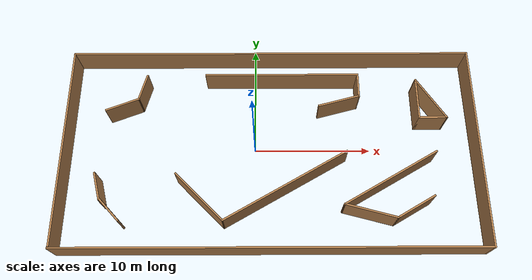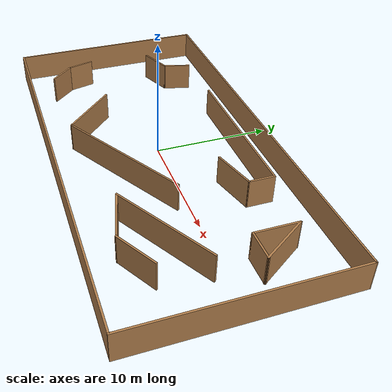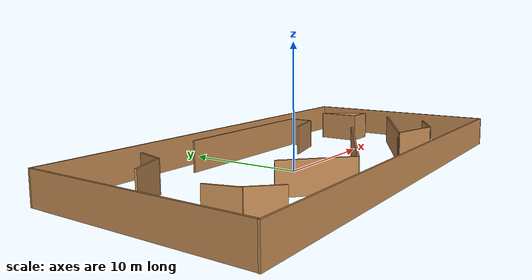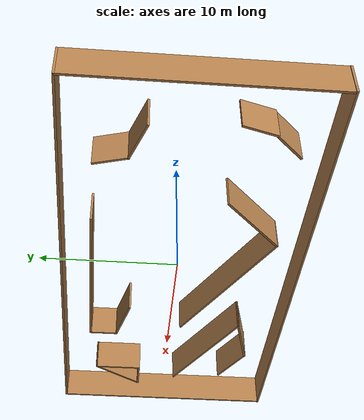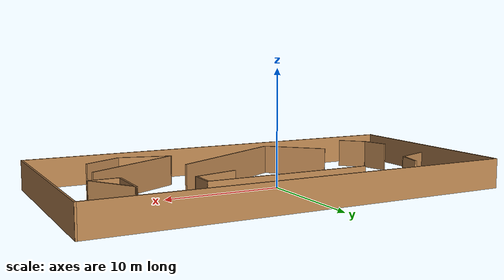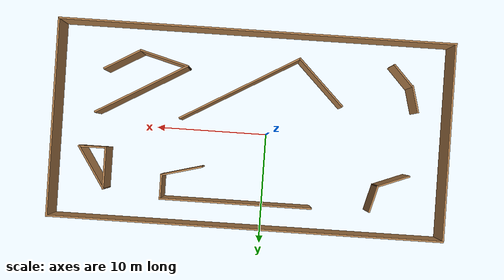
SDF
<?xml version='1.0'?>
<sdf version='1.6'>
  <model name='Sandbox_nav'>
    <pose frame=''>1.38768 -0.292866 0 0 -0 0</pose>
    <link name='Wall_10'>
      <collision name='Wall_10_Collision'>
        <geometry>
          <box>
            <size>2.5 0.15 2.5</size>
          </box>
        </geometry>
        <pose frame=''>0 0 1.25 0 -0 0</pose>
      </collision>
      <visual name='Wall_10_Visual'>
        <pose frame=''>0 0 1.25 0 -0 0</pose>
        <geometry>
          <box>
            <size>2.5 0.15 2.5</size>
          </box>
        </geometry>
        <material>
          <script>
            <uri>file://media/materials/scripts/gazebo.material</uri>
            <name>Gazebo/Wood</name>
          </script>
          <ambient>1 1 1 1</ambient>
        </material>
        <meta>
          <layer>0</layer>
        </meta>
      </visual>
      <pose frame=''>-11.1858 5.38005 0 0 -0 -1.8326</pose>
    </link>
    <link name='Wall_11'>
      <collision name='Wall_11_Collision'>
        <geometry>
          <box>
            <size>3.04858 0.15 2.5</size>
          </box>
        </geometry>
        <pose frame=''>0 0 1.25 0 -0 0</pose>
      </collision>
      <visual name='Wall_11_Visual'>
        <pose frame=''>0 0 1.25 0 -0 0</pose>
        <geometry>
          <box>
            <size>3.04858 0.15 2.5</size>
          </box>
        </geometry>
        <material>
          <script>
            <uri>file://media/materials/scripts/gazebo.material</uri>
            <name>Gazebo/Wood</name>
          </script>
          <ambient>1 1 1 1</ambient>
        </material>
        <meta>
          <layer>0</layer>
        </meta>
      </visual>
      <pose frame=''>-12.8406 3.71958 0 0 -0 -2.77054</pose>
    </link>
    <link name='Wall_13'>
      <collision name='Wall_13_Collision'>
        <geometry>
          <box>
            <size>13.5 0.15 2.5</size>
          </box>
        </geometry>
        <pose frame=''>0 0 1.25 0 -0 0</pose>
      </collision>
      <visual name='Wall_13_Visual'>
        <pose frame=''>0 0 1.25 0 -0 0</pose>
        <geometry>
          <box>
            <size>13.5 0.15 2.5</size>
          </box>
        </geometry>
        <material>
          <script>
            <uri>file://media/materials/scripts/gazebo.material</uri>
            <name>Gazebo/Wood</name>
          </script>
          <ambient>1 1 1 1</ambient>
        </material>
        <meta>
          <layer>0</layer>
        </meta>
      </visual>
      <pose frame=''>0.975034 6.59525 0 0 -0 0</pose>
    </link>
    <link name='Wall_14'>
      <collision name='Wall_14_Collision'>
        <geometry>
          <box>
            <size>2.25 0.15 2.5</size>
          </box>
        </geometry>
        <pose frame=''>0 0 1.25 0 -0 0</pose>
      </collision>
      <visual name='Wall_14_Visual'>
        <pose frame=''>0 0 1.25 0 -0 0</pose>
        <geometry>
          <box>
            <size>2.25 0.15 2.5</size>
          </box>
        </geometry>
        <material>
          <script>
            <uri>file://media/materials/scripts/gazebo.material</uri>
            <name>Gazebo/Wood</name>
          </script>
          <ambient>1 1 1 1</ambient>
        </material>
        <meta>
          <layer>0</layer>
        </meta>
      </visual>
      <pose frame=''>7.65003 5.54525 0 0 -0 -1.5708</pose>
    </link>
    <link name='Wall_15'>
      <collision name='Wall_15_Collision'>
        <geometry>
          <box>
            <size>3.75 0.15 2.5</size>
          </box>
        </geometry>
        <pose frame=''>0 0 1.25 0 -0 0</pose>
      </collision>
      <visual name='Wall_15_Visual'>
        <pose frame=''>0 0 1.25 0 -0 0</pose>
        <geometry>
          <box>
            <size>3.75 0.15 2.5</size>
          </box>
        </geometry>
        <material>
          <script>
            <uri>file://media/materials/scripts/gazebo.material</uri>
            <name>Gazebo/Wood</name>
          </script>
          <ambient>1 1 1 1</ambient>
        </material>
        <meta>
          <layer>0</layer>
        </meta>
      </visual>
      <pose frame=''>5.91137 4.02938 0 0 -0 -2.87979</pose>
    </link>
    <link name='Wall_17'>
      <collision name='Wall_17_Collision'>
        <geometry>
          <box>
            <size>2.5 0.15 2.5</size>
          </box>
        </geometry>
        <pose frame=''>0 0 1.25 0 -0 0</pose>
      </collision>
      <visual name='Wall_17_Visual'>
        <pose frame=''>0 0 1.25 0 -0 0</pose>
        <geometry>
          <box>
            <size>2.5 0.15 2.5</size>
          </box>
        </geometry>
        <material>
          <script>
            <uri>file://media/materials/scripts/gazebo.material</uri>
            <name>Gazebo/Wood</name>
          </script>
          <ambient>1 1 1 1</ambient>
        </material>
        <meta>
          <layer>0</layer>
        </meta>
      </visual>
      <pose frame=''>-14.2871 -3.67129 0 0 -0 -1.309</pose>
    </link>
    <link name='Wall_18'>
      <collision name='Wall_18_Collision'>
        <geometry>
          <box>
            <size>2.53676 0.15 2.5</size>
          </box>
        </geometry>
        <pose frame=''>0 0 1.25 0 -0 0</pose>
      </collision>
      <visual name='Wall_18_Visual'>
        <pose frame=''>0 0 1.25 0 -0 0</pose>
        <geometry>
          <box>
            <size>2.53676 0.15 2.5</size>
          </box>
        </geometry>
        <material>
          <script>
            <uri>file://media/materials/scripts/gazebo.material</uri>
            <name>Gazebo/Wood</name>
          </script>
          <ambient>1 1 1 1</ambient>
        </material>
        <meta>
          <layer>0</layer>
        </meta>
      </visual>
      <pose frame=''>-13.0985 -5.67914 0 0 -0 -0.820423</pose>
    </link>
    <link name='Wall_20'>
      <collision name='Wall_20_Collision'>
        <geometry>
          <box>
            <size>5.75 0.15 2.5</size>
          </box>
        </geometry>
        <pose frame=''>0 0 1.25 0 -0 0</pose>
      </collision>
      <visual name='Wall_20_Visual'>
        <pose frame=''>0 0 1.25 0 -0 0</pose>
        <geometry>
          <box>
            <size>5.75 0.15 2.5</size>
          </box>
        </geometry>
        <material>
          <script>
            <uri>file://media/materials/scripts/gazebo.material</uri>
            <name>Gazebo/Wood</name>
          </script>
          <ambient>1 1 1 1</ambient>
        </material>
        <meta>
          <layer>0</layer>
        </meta>
      </visual>
      <pose frame=''>-5.88942 -4.58699 0 0 -0 -0.785398</pose>
    </link>
    <link name='Wall_21'>
      <collision name='Wall_21_Collision'>
        <geometry>
          <box>
            <size>12 0.15 2.5</size>
          </box>
        </geometry>
        <pose frame=''>0 0 1.25 0 -0 0</pose>
      </collision>
      <visual name='Wall_21_Visual'>
        <pose frame=''>0 0 1.25 0 -0 0</pose>
        <geometry>
          <box>
            <size>12 0.15 2.5</size>
          </box>
        </geometry>
        <material>
          <script>
            <uri>file://media/materials/scripts/gazebo.material</uri>
            <name>Gazebo/Wood</name>
          </script>
          <ambient>1 1 1 1</ambient>
        </material>
        <meta>
          <layer>0</layer>
        </meta>
      </visual>
      <pose frame=''>1.22168 -3.60439 0 0 -0 0.523599</pose>
    </link>
    <link name='Wall_23'>
      <collision name='Wall_23_Collision'>
        <geometry>
          <box>
            <size>9.25 0.15 2.5</size>
          </box>
        </geometry>
        <pose frame=''>0 0 1.25 0 -0 0</pose>
      </collision>
      <visual name='Wall_23_Visual'>
        <pose frame=''>0 0 1.25 0 -0 0</pose>
        <geometry>
          <box>
            <size>9.25 0.15 2.5</size>
          </box>
        </geometry>
        <material>
          <script>
            <uri>file://media/materials/scripts/gazebo.material</uri>
            <name>Gazebo/Wood</name>
          </script>
          <ambient>1 1 1 1</ambient>
        </material>
        <meta>
          <layer>0</layer>
        </meta>
      </visual>
      <pose frame=''>9.91268 -2.97165 0 0 -0 -2.61799</pose>
    </link>
    <link name='Wall_24'>
      <collision name='Wall_24_Collision'>
        <geometry>
          <box>
            <size>4.5 0.15 2.5</size>
          </box>
        </geometry>
        <pose frame=''>0 0 1.25 0 -0 0</pose>
      </collision>
      <visual name='Wall_24_Visual'>
        <pose frame=''>0 0 1.25 0 -0 0</pose>
        <geometry>
          <box>
            <size>4.5 0.15 2.5</size>
          </box>
        </geometry>
        <material>
          <script>
            <uri>file://media/materials/scripts/gazebo.material</uri>
            <name>Gazebo/Wood</name>
          </script>
          <ambient>1 1 1 1</ambient>
        </material>
        <meta>
          <layer>0</layer>
        </meta>
      </visual>
      <pose frame=''>8.07316 -5.80958 0 0 -0 -0.261799</pose>
    </link>
    <link name='Wall_25'>
      <collision name='Wall_25_Collision'>
        <geometry>
          <box>
            <size>3.75 0.15 2.5</size>
          </box>
        </geometry>
        <pose frame=''>0 0 1.25 0 -0 0</pose>
      </collision>
      <visual name='Wall_25_Visual'>
        <pose frame=''>0 0 1.25 0 -0 0</pose>
        <geometry>
          <box>
            <size>3.75 0.15 2.5</size>
          </box>
        </geometry>
        <material>
          <script>
            <uri>file://media/materials/scripts/gazebo.material</uri>
            <name>Gazebo/Wood</name>
          </script>
          <ambient>1 1 1 1</ambient>
        </material>
        <meta>
          <layer>0</layer>
        </meta>
      </visual>
      <pose frame=''>11.7329 -5.47251 0 0 -0 0.523599</pose>
    </link>
    <link name='Wall_27'>
      <collision name='Wall_27_Collision'>
        <geometry>
          <box>
            <size>3.75 0.15 2.5</size>
          </box>
        </geometry>
        <pose frame=''>0 0 1.25 0 -0 0</pose>
      </collision>
      <visual name='Wall_27_Visual'>
        <pose frame=''>0 0 1.25 0 -0 0</pose>
        <geometry>
          <box>
            <size>3.75 0.15 2.5</size>
          </box>
        </geometry>
        <material>
          <script>
            <uri>file://media/materials/scripts/gazebo.material</uri>
            <name>Gazebo/Wood</name>
          </script>
          <ambient>1 1 1 1</ambient>
        </material>
        <meta>
          <layer>0</layer>
        </meta>
      </visual>
      <pose frame=''>12.721 4.22527 0 0 -0 -1.5708</pose>
    </link>
    <link name='Wall_29'>
      <collision name='Wall_29_Collision'>
        <geometry>
          <box>
            <size>2.5 0.15 2.5</size>
          </box>
        </geometry>
        <pose frame=''>0 0 1.25 0 -0 0</pose>
      </collision>
      <visual name='Wall_29_Visual'>
        <pose frame=''>0 0 1.25 0 -0 0</pose>
        <geometry>
          <box>
            <size>2.5 0.15 2.5</size>
          </box>
        </geometry>
        <material>
          <script>
            <uri>file://media/materials/scripts/gazebo.material</uri>
            <name>Gazebo/Wood</name>
          </script>
          <ambient>1 1 1 1</ambient>
        </material>
        <meta>
          <layer>0</layer>
        </meta>
      </visual>
      <pose frame=''>13.896 2.42527 0 0 -0 0</pose>
    </link>
    <link name='Wall_3'>
      <collision name='Wall_3_Collision'>
        <geometry>
          <box>
            <size>35.25 0.15 2.5</size>
          </box>
        </geometry>
        <pose frame=''>0 0 1.25 0 -0 0</pose>
      </collision>
      <visual name='Wall_3_Visual'>
        <pose frame=''>0 0 1.25 0 -0 0</pose>
        <geometry>
          <box>
            <size>35.25 0.15 2.5</size>
          </box>
        </geometry>
        <material>
          <script>
            <uri>file://media/materials/scripts/gazebo.material</uri>
            <name>Gazebo/Wood</name>
          </script>
          <ambient>1 1 1 1</ambient>
        </material>
        <meta>
          <layer>0</layer>
        </meta>
      </visual>
      <pose frame=''>-0.035457 -8.75637 0 0 -0 0</pose>
    </link>
    <link name='Wall_30'>
      <collision name='Wall_30_Collision'>
        <geometry>
          <box>
            <size>4.44913 0.15 2.5</size>
          </box>
        </geometry>
        <pose frame=''>0 0 1.25 0 -0 0</pose>
      </collision>
      <visual name='Wall_30_Visual'>
        <pose frame=''>0 0 1.25 0 -0 0</pose>
        <geometry>
          <box>
            <size>4.44913 0.15 2.5</size>
          </box>
        </geometry>
        <material>
          <script>
            <uri>file://media/materials/scripts/gazebo.material</uri>
            <name>Gazebo/Wood</name>
          </script>
          <ambient>1 1 1 1</ambient>
        </material>
        <meta>
          <layer>0</layer>
        </meta>
      </visual>
      <pose frame=''>13.896 4.22527 0 0 -0 2.14912</pose>
    </link>
    <link name='Wall_4'>
      <collision name='Wall_4_Collision'>
        <geometry>
          <box>
            <size>17.6631 0.15 2.5</size>
          </box>
        </geometry>
        <pose frame=''>0 0 1.25 0 -0 0</pose>
      </collision>
      <visual name='Wall_4_Visual'>
        <pose frame=''>0 0 1.25 0 -0 0</pose>
        <geometry>
          <box>
            <size>17.6631 0.15 2.5</size>
          </box>
        </geometry>
        <material>
          <script>
            <uri>file://media/materials/scripts/gazebo.material</uri>
            <name>Gazebo/Wood</name>
          </script>
          <ambient>1 1 1 1</ambient>
        </material>
        <meta>
          <layer>0</layer>
        </meta>
      </visual>
      <pose frame=''>17.5671 -0 0 0 -0 1.57287</pose>
    </link>
    <link name='Wall_5'>
      <collision name='Wall_5_Collision'>
        <geometry>
          <box>
            <size>35.25 0.15 2.5</size>
          </box>
        </geometry>
        <pose frame=''>0 0 1.25 0 -0 0</pose>
      </collision>
      <visual name='Wall_5_Visual'>
        <pose frame=''>0 0 1.25 0 -0 0</pose>
        <geometry>
          <box>
            <size>35.25 0.15 2.5</size>
          </box>
        </geometry>
        <material>
          <script>
            <uri>file://media/materials/scripts/gazebo.material</uri>
            <name>Gazebo/Wood</name>
          </script>
          <ambient>1 1 1 1</ambient>
        </material>
        <meta>
          <layer>0</layer>
        </meta>
      </visual>
      <pose frame=''>-0.001077 8.75637 0 0 -0 3.14159</pose>
    </link>
    <link name='Wall_6'>
      <collision name='Wall_6_Collision'>
        <geometry>
          <box>
            <size>17.5 0.15 2.5</size>
          </box>
        </geometry>
        <pose frame=''>0 0 1.25 0 -0 0</pose>
      </collision>
      <visual name='Wall_6_Visual'>
        <pose frame=''>0 0 1.25 0 -0 0</pose>
        <geometry>
          <box>
            <size>17.5 0.15 2.5</size>
          </box>
        </geometry>
        <material>
          <script>
            <uri>file://media/materials/scripts/gazebo.material</uri>
            <name>Gazebo/Wood</name>
          </script>
          <ambient>1 1 1 1</ambient>
        </material>
        <meta>
          <layer>0</layer>
        </meta>
      </visual>
      <pose frame=''>-17.5511 0.081367 0 0 -0 -1.5708</pose>
    </link>
    <static>1</static>
  </model>
</sdf>
